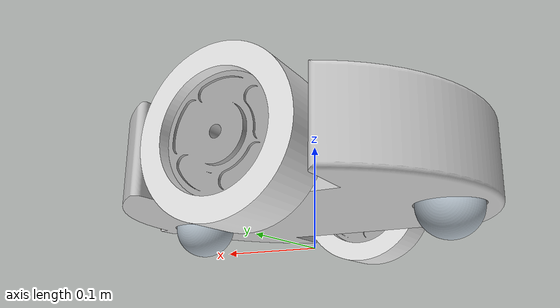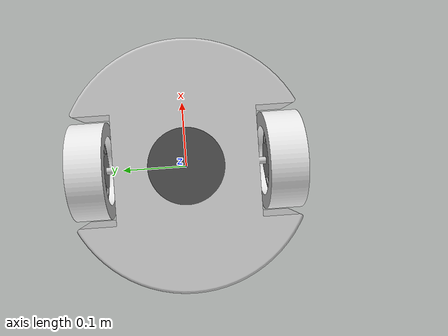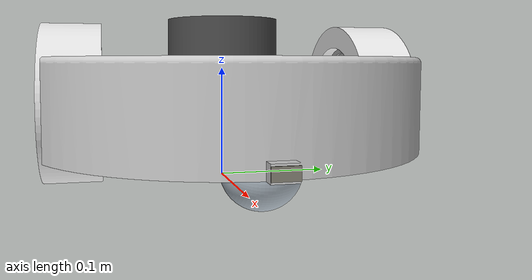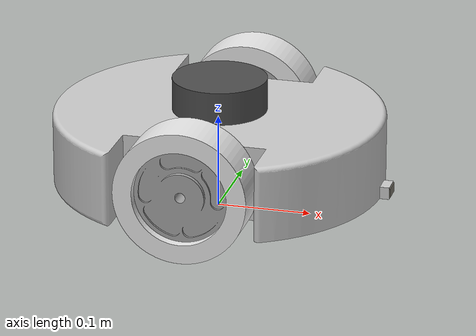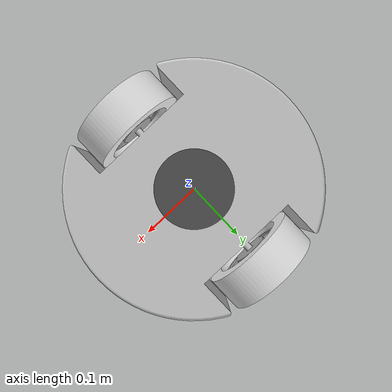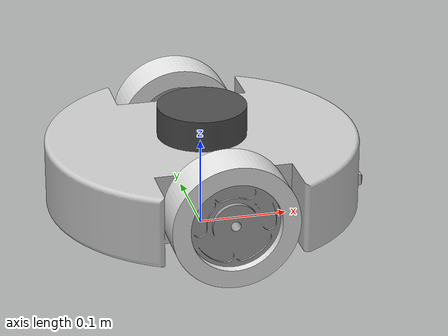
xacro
<?xml version="1.0" ?>
<!-- Generated using onshape-to-robot -->
<!-- Onshape document_id: 4875ec4cbd861bf59dacc3de -->
<robot name="my_robot" xmlns:xacro="http://www.ros.org/wiki/xacro">

    <xacro:include filename="xacro_properties/xacro_properties.xacro" />
    <xacro:include filename="modules/base_and_wheels.xacro" />
    <xacro:include filename="modules/camera.xacro" />
    <xacro:include filename="modules/lidar.xacro" />
    <xacro:include filename="gazebo/gazebo_plugins.xacro" />
    <xacro:include filename="gazebo/gazebo_properties.xacro" />

</robot>

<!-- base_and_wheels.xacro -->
<!-- Generated using onshape-to-robot -->
<!-- Onshape document_id: 4875ec4cbd861bf59dacc3de -->
<robot xmlns:xacro="http://www.ros.org/wiki/xacro">

    <!-- Link base footprint-->
    <link name="base_footprint" />

    <!-- Joint base footprint -->
    <joint name="base_joint" type="fixed">
        <parent link="base_footprint"/>
        <child link="base_link"/>
        <origin xyz="0.0 0.0 0.1" rpy="0.0 0.0 0.0"/>
    </joint>

    <!-- Link base -->
  <link name="base_link">
    <inertial>
      <origin xyz="0.00173747 1.94352e-06 -0.0301107" rpy="0 0 0"/>
      <mass value="5.99226"/>
      <inertia ixx="0.0320319" ixy="-4.38482e-07" ixz="2.87354e-05" iyy="0.0561975" iyz="9.11259e-08" izz="0.0817942"/>
    </inertial>
    <visual>
      <origin xyz="0.00160544 -6.245e-17 -0.0709025" rpy="0 -0 0"/>
      <geometry>
        <mesh filename="package://my_robot_description/assets/base.stl"/>
      </geometry>
      <material name="base_material">
        <color rgba="0.8 0.8 0.8 1"/>
      </material>
    </visual>
    <collision>
      <origin xyz="0.00160544 -6.245e-17 -0.0709025" rpy="0 -0 0"/>
      <geometry>
        <mesh filename="package://my_robot_description/assets/base.stl"/>
      </geometry>
    </collision>
  </link>

  <!-- Link hub -->
  <link name="hub_link">
    <inertial>
      <origin xyz="1.29274e-18 -4.20141e-18 -0.02" rpy="0 0 0"/>
      <mass value="1.05962"/>
      <inertia ixx="0.000713534" ixy="0" ixz="0" iyy="0.000713534" iyz="0" izz="0.00124537"/>
    </inertial>
    <visual>
      <origin xyz="0 0 -0.02" rpy="1.5708 -0 0"/>
      <geometry>
        <mesh filename="package://my_robot_description/assets/hub.stl"/>
      </geometry>
      <material name="hub_material">
        <color rgba="0.647059 0.647059 0.647059 1"/>
      </material>
    </visual>
    <collision>
      <origin xyz="0 0 -0.02" rpy="1.5708 -0 0"/>
      <geometry>
        <mesh filename="package://my_robot_description/assets/hub.stl"/>
      </geometry>
    </collision>
  </link>

  <!-- Link rubber_tire -->
  <link name="rubber_tire_link">
    <inertial>
      <origin xyz="-1.52248e-50 -3.07598e-18 -6.74047e-18" rpy="0 0 0"/>
      <mass value="0.41469"/>
      <inertia ixx="0.000853571" ixy="0" ixz="0" iyy="0.000853571" iyz="0" izz="0.00153435"/>
    </inertial>
    <visual>
      <origin xyz="0 -1.04083e-17 0" rpy="-1.5708 -0 0"/>
      <geometry>
        <mesh filename="package://my_robot_description/assets/rubber_tire.stl"/>
      </geometry>
      <material name="rubber_tire_material">
        <color rgba="0.917647 0.917647 0.917647 1"/>
      </material>
    </visual>
    <collision>
      <origin xyz="0 -1.04083e-17 0" rpy="-1.5708 -0 0"/>
      <geometry>
        <mesh filename="package://my_robot_description/assets/rubber_tire.stl"/>
      </geometry>
    </collision>
  </link>

  <!-- Joint from hub to rubber_tire -->
  <joint name="left_assembly_joint" type="fixed">
    <origin xyz="0 -3.46945e-18 -0.02" rpy="3.14159 -0 0"/>
    <parent link="hub_link"/>
    <child link="rubber_tire_link"/>
  </joint>

  <!-- Joint from base to hub -->
  <joint name="left_wheel_base_joint" type="continuous">
    <origin xyz="0.00160544 -0.115 -0.0309025" rpy="-1.5708 -0 0"/>
    <parent link="base_link"/>
    <child link="hub_link"/>
    <axis xyz="0 0 1"/>
    <limit effort="100" velocity="100" />
  </joint>

  <!-- Link hub_2 -->
  <link name="hub_2_link">
    <inertial>
      <origin xyz="1.29274e-18 4.20141e-18 -0.02" rpy="0 0 0"/>
      <mass value="1.05962"/>
      <inertia ixx="0.000713534" ixy="0" ixz="0" iyy="0.000713534" iyz="0" izz="0.00124537"/>
    </inertial>
    <visual>
      <origin xyz="0 0 -0.02" rpy="-1.5708 -0 0"/>
      <geometry>
        <mesh filename="package://my_robot_description/assets/hub.stl"/>
      </geometry>
      <material name="hub_2_material">
        <color rgba="0.647059 0.647059 0.647059 1"/>
      </material>
    </visual>
    <collision>
      <origin xyz="0 0 -0.02" rpy="-1.5708 -0 0"/>
      <geometry>
        <mesh filename="package://my_robot_description/assets/hub.stl"/>
      </geometry>
    </collision>
  </link>

  <!-- Link rubber_tire_2 -->
  <link name="rubber_tire_2_link">
    <inertial>
      <origin xyz="1.23149e-33 -3.07598e-18 -6.74047e-18" rpy="0 0 0"/>
      <mass value="0.41469"/>
      <inertia ixx="0.000853571" ixy="0" ixz="-1.2438e-19" iyy="0.000853571" iyz="0" izz="0.00153435"/>
    </inertial>
    <visual>
      <origin xyz="0 -1.04083e-17 0" rpy="-1.5708 -1.82701e-16 0"/>
      <geometry>
        <mesh filename="package://my_robot_description/assets/rubber_tire.stl"/>
      </geometry>
      <material name="rubber_tire_2_material">
        <color rgba="0.917647 0.917647 0.917647 1"/>
      </material>
    </visual>
    <collision>
      <origin xyz="0 -1.04083e-17 0" rpy="-1.5708 -1.82701e-16 0"/>
      <geometry>
        <mesh filename="package://my_robot_description/assets/rubber_tire.stl"/>
      </geometry>
    </collision>
  </link>

  <!-- Joint from hub_2 to rubber_tire_2 -->
  <joint name="right_assembly_joint" type="fixed">
    <origin xyz="0 3.46945e-18 -0.02" rpy="0 -0 0"/>
    <parent link="hub_2_link"/>
    <child link="rubber_tire_2_link"/>
  </joint>

  <!-- Joint from base to hub_2 -->
  <joint name="right_wheel_base_joint" type="continuous">
    <origin xyz="0.00160544 0.115 -0.0309025" rpy="1.5708 -0 1.82701e-16"/>
    <parent link="base_link"/>
    <child link="hub_2_link"/>
    <axis xyz="0 0 -1"/>
    <limit effort="100" velocity="100"/>
  </joint>

  <!-- Link caster_wheel -->
  <link name="caster_wheel_link">
    <inertial>
      <origin xyz="0 0 -2.52583e-18" rpy="0 0 0"/>
      <mass value="0.124407"/>
      <inertia ixx="4.47865e-05" ixy="0" ixz="0" iyy="4.47865e-05" iyz="0" izz="4.47865e-05"/>
    </inertial>
    <visual>
      <origin xyz="0 0 0" rpy="0 0 0"/>
      <geometry>
        <mesh filename="package://my_robot_description/assets/caster_wheel.stl"/>
      </geometry>
      <material name="caster_wheel_material">
        <color rgba="0.713725 0.760784 0.8 1"/>
      </material>
    </visual>
    <collision>
      <origin xyz="0 0 0" rpy="0 0 0"/>
      <geometry>
        <mesh filename="package://my_robot_description/assets/caster_wheel.stl"/>
      </geometry>
    </collision>
  </link>

  <!-- Joint from base to caster_wheel -->
  <joint name="front_caster_wheel_base_joint" type="fixed">
    <origin xyz="0.133105 -6.31542e-17 -0.0709025" rpy="0 0 0"/>
    <parent link="base_link"/>
    <child link="caster_wheel_link"/>
  </joint>

  <!-- Link caster_wheel_2 -->
  <link name="caster_wheel_2_link">
    <inertial>
      <origin xyz="0 0 -2.52583e-18" rpy="0 0 0"/>
      <mass value="0.124407"/>
      <inertia ixx="4.47865e-05" ixy="0" ixz="0" iyy="4.47865e-05" iyz="0" izz="4.47865e-05"/>
    </inertial>
    <visual>
      <origin xyz="0 0 0" rpy="0 -0 0"/>
      <geometry>
        <mesh filename="package://my_robot_description/assets/caster_wheel.stl"/>
      </geometry>
      <material name="caster_wheel_2_material">
        <color rgba="0.713725 0.760784 0.8 1"/>
      </material>
    </visual>
    <collision>
      <origin xyz="0 0 0" rpy="0 0 0"/>
      <geometry>
        <mesh filename="package://my_robot_description/assets/caster_wheel.stl"/>
      </geometry>
    </collision>
  </link>

   <!-- Joint from base to caster_wheel_2 -->
  <joint name="back_caster_wheel_base_joint" type="fixed">
    <origin xyz="-0.129895 -6.245e-17 -0.0709025" rpy="0 0 0"/>
    <parent link="base_link"/>
    <child link="caster_wheel_2_link"/>
  </joint>

</robot>

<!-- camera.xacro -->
<!-- Generated using onshape-to-robot -->
<!-- Onshape document_id: 4875ec4cbd861bf59dacc3de -->
<robot xmlns:xacro="http://www.ros.org/wiki/xacro">

    <!-- Link camera -->
  <link name="camera_link">
    <inertial>
      <origin xyz="2.83607e-19 1.807e-20 -0.0005" rpy="0 0 0"/>
      <mass value="0.00054"/>
      <inertia ixx="4.545e-09" ixy="0" ixz="0" iyy="1.8045e-08" iyz="0" izz="2.25e-08"/>
    </inertial>
    <visual>
      <origin xyz="4.33681e-19 0 0" rpy="0 3.14 1.57"/>
      <geometry>
        <mesh filename="package://my_robot_description/assets/camera.stl"/>
      </geometry>
      <material name="camera_material">
        <color rgba="0.501961 0.486275 0.439216 1"/>
      </material>
    </visual>
    <collision>
      <origin xyz="4.33681e-19 0 0" rpy="1.5708 -0 0"/>
      <geometry>
        <mesh filename="package://my_robot_description/assets/camera.stl"/>
      </geometry>
    </collision>
  </link>

  <!-- Joint from base to camera -->
  <joint name="camera_base_joint" type="fixed">
    <origin xyz="0.186368 0.000887959 -0.0643525" rpy="0 0 0"/>
    <parent link="base_link"/>
    <child link="camera_link"/>
    <axis xyz="0 0 1"/>
    <limit effort="100" velocity="100"/>
  </joint>

  <link name="camera_optical_link">
  </link>

  <joint name="camera_optical_joint" type="fixed">
      <!-- these values have to be these values otherwise the gazebo camera
          image won't be aligned properly with the frame it is supposedly
          originating from -->
      <origin xyz="0 0 0" rpy="${-pi/2} 0 ${-pi/2}"/>
      <parent link="camera_link"/>
      <child link="camera_optical_link"/>
  </joint>

</robot>

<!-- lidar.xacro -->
<!-- Generated using onshape-to-robot -->
<!-- Onshape document_id: 4875ec4cbd861bf59dacc3de -->
<robot xmlns:xacro="http://www.ros.org/wiki/xacro">

   <!-- Link lidar -->
  <link name="lidar_link">
    <inertial>
      <origin xyz="-9.74543e-19 0 -0.0175" rpy="0 0 0"/>
      <mass value="0.302378"/>
      <inertia ixx="0.000219854" ixy="0" ixz="0" iyy="0.000219854" iyz="0" izz="0.000377973"/>
    </inertial>
    <visual>
      <origin xyz="0.0 3.06162e-18 0" rpy="3.14159 -0 0"/>
      <geometry>
        <mesh filename="package://my_robot_description/assets/lidar.stl"/>
      </geometry>
      <material name="lidar_material">
        <color rgba="0.301961 0.301961 0.301961 1"/>
      </material>
    </visual>
    <collision>
      <origin xyz="0 3.06162e-18 0" rpy="3.14159 -0 0"/>
      <geometry>
        <mesh filename="package://my_robot_description/assets/lidar.stl"/>
      </geometry>
    </collision>
  </link>

  <!-- Joint from base to lidar -->
  <joint name="lidar_base_joint" type="fixed">
    <origin xyz="0.00160544 -4.1519e-18 0.00909749" rpy="3.14159 -0 0"/>
    <parent link="base_link"/>
    <child link="lidar_link"/>
    <axis xyz="0 0 1"/>
    <limit effort="100" velocity="100"/>
  </joint>

</robot>
